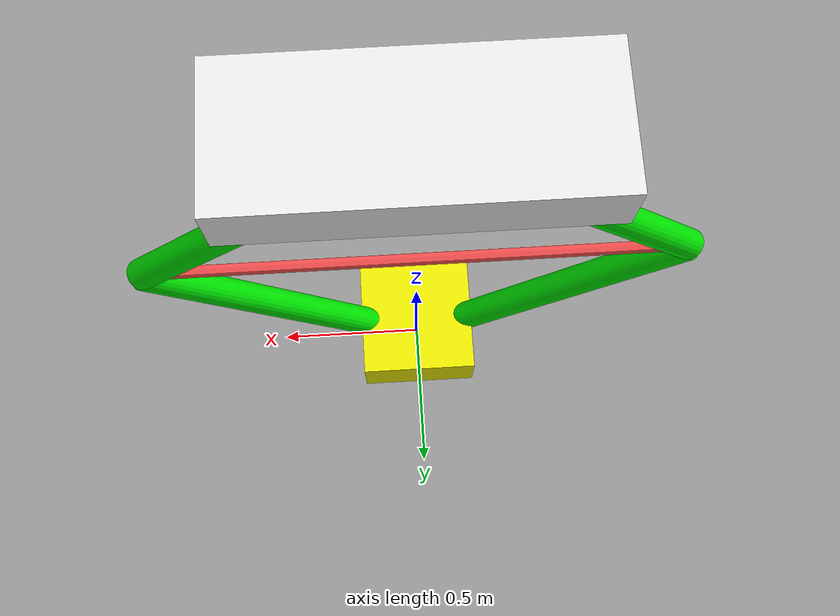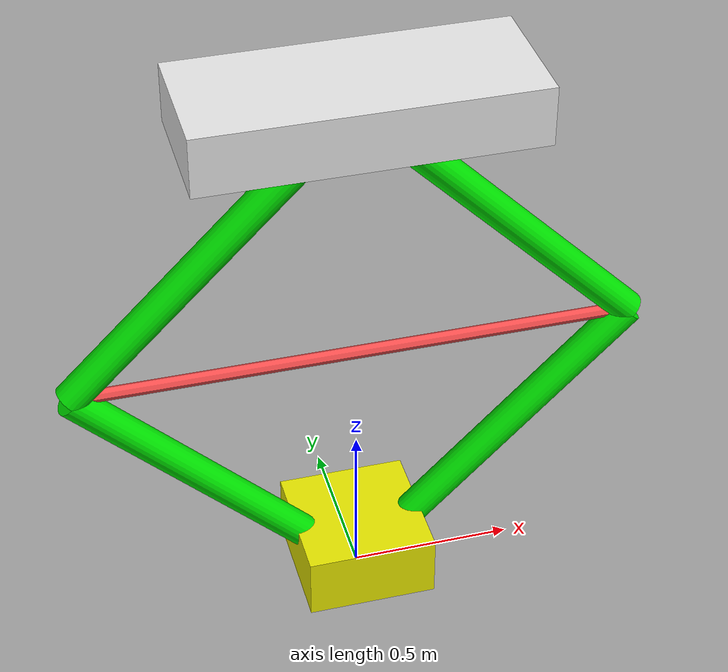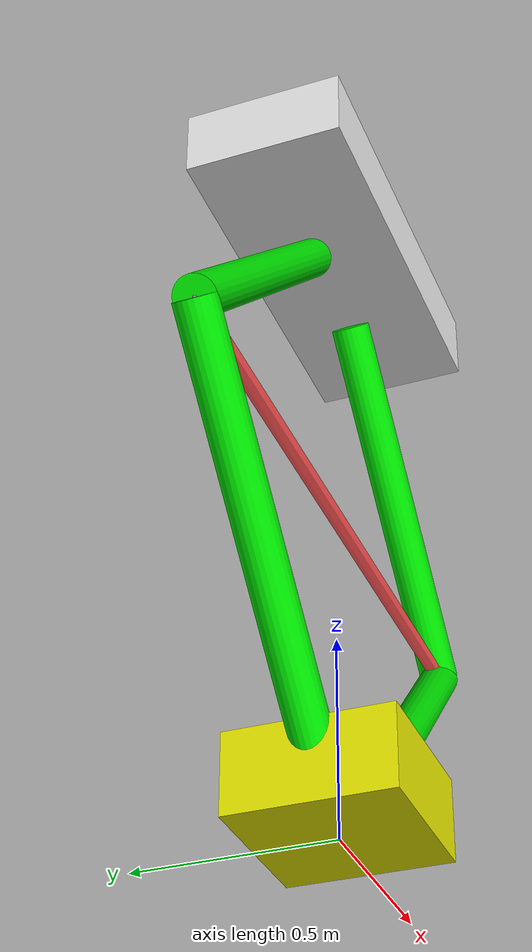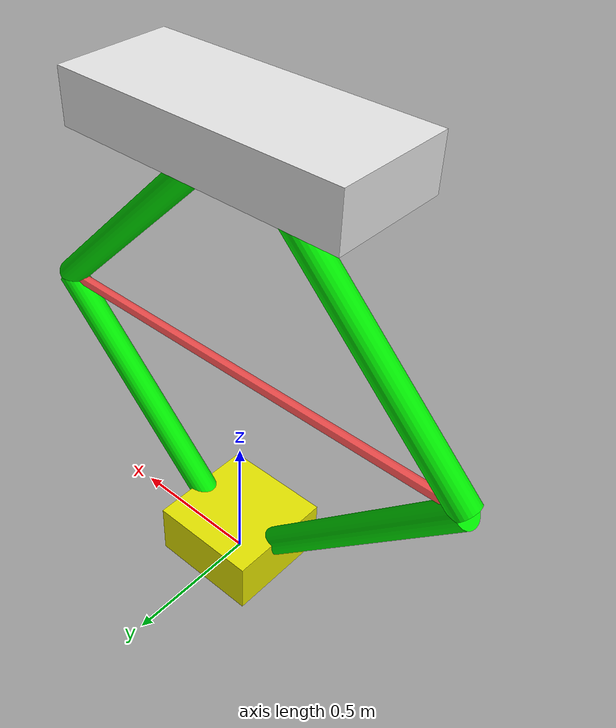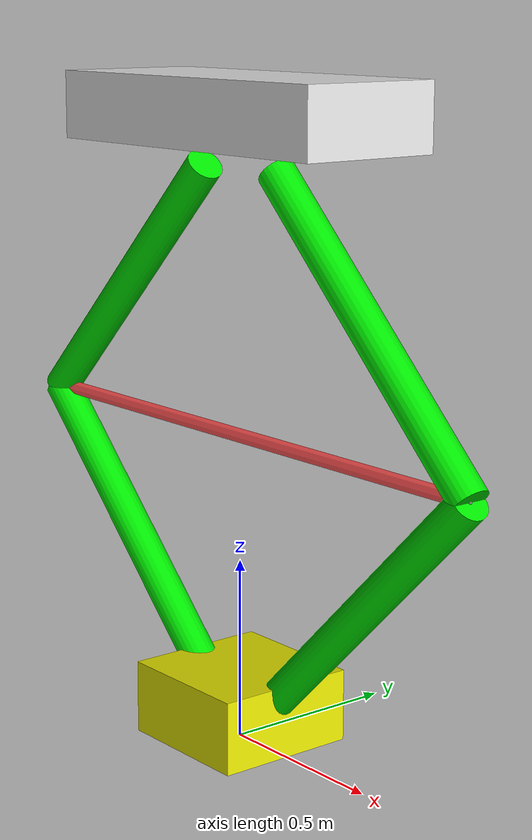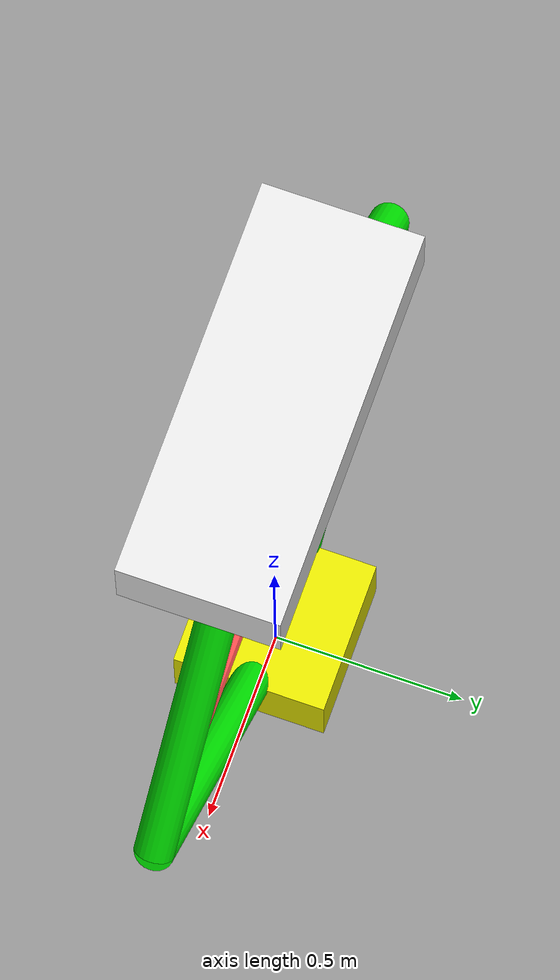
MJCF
<mujoco>

	<option timestep="0.001" integrator="RK4" gravity="0 0 -9.81">
		<flag sensornoise="enable" contact="enable" energy="enable" />
	</option>

	<statistic center="0 0 0.55" extent="1.1" />

	<visual>
		<headlight diffuse="0.6 0.6 0.6" ambient="0.3 0.3 0.3" specular="0 0 0" />
		<rgba haze="0.15 0.25 0.35 1" />
		<global azimuth="150" elevation="-20" />
	</visual>

	<worldbody>
		<light diffuse=".5 .5 .5" pos="0 0 3" dir="0 0 -1" />
		<body name="hopper" pos="0 0 1.7">
			<!-- 约束跳跃机器人只在x和z方向自由 -->
			<joint name="x" type="slide" pos="0 0 0" axis="1 0 0" />
			<joint name="z" type="slide" pos="0 0 0" axis="0 0 1" />

			<geom type="box" size=".5 .2 .09" rgba=".9 .9 .9 1" mass="1" />
			<site name="imu" size="0.01" pos="0 0 0" />
			<body name="thigh_left" pos="-0.5 0 -0.5" euler="0 45 0">
				<joint name="hip_left" type="hinge" pos="0 0 0.5" axis="0 -1 0" />
				<geom type="cylinder" size=".05 .5" rgba="0 .9 0 1" />
				<site name="s_left" pos="0 0 -0.5" />
				<body name="leg_left" pos=".5 0 -0.5" euler="0 -90 0">
					<joint name="knee_left" type="hinge" pos="0 0 0.5" axis="0 -1 0" />
					<geom type="cylinder" size=".05 .5" rgba="0 .9 0 1" />
				</body>
			</body>
			<body name="thigh_right" pos="0.5 0 -0.5" euler="0 -45 0">
				<joint name="hip_right" type="hinge" pos="0 0 0.5" axis="0 -1 0" />
				<geom type="cylinder" size=".05 .5" rgba="0 .9 0 1" />
				<site name="s_right" pos="0 0 -0.5" />
				<body name="leg_right" pos="-.5 0 -0.5" euler="0 90 0">
					<joint name="knee_right" type="hinge" pos="0 0 0.5" axis="0 -1 0" />
					<geom type="cylinder" size=".05 .5" rgba="0 .9 0 1" />
				</body>
			</body>
		</body>
		<body name="foot" pos="0 0 0.101">
			<freejoint />
			<geom type="box" size=".2 .2 .1" rgba=".9 .9 .0 1" mass="1" />
		</body>
	</worldbody>

	<contact>
		<exclude name="e0" body1="hopper" body2="thigh_left" />
		<exclude name="e1" body1="hopper" body2="thigh_right" />
		<exclude name="e2" body1="thigh_left" body2="leg_left" />
		<exclude name="e3" body1="thigh_right" body2="leg_right" />
		<exclude name="e4" body1="leg_left" body2="foot" />
		<exclude name="e5" body1="leg_right" body2="foot" />
	</contact>

	<equality>
		<connect name="c1" body1="leg_left" body2="foot" anchor="0 0 -0.5" />
		<connect name="c2" body1="leg_right" body2="foot" anchor="0 0 -0.5" />
	</equality>

	<tendon>
		<spatial name='tendon1' range="0.1 10" limited="true" width=".02" rgba=".95 .3 .3 1"
			stiffness="1500" damping="10" springlength="1 1.101">
			<site site="s_left" />
			<site site="s_right" />
		</spatial>
	</tendon>

	<actuator>
		<motor name="left-hip-roll" joint="hip_left" gear="25" ctrlrange="-2 2" ctrllimited="true"
			user="2900" />
		<motor name="right-hip-roll" joint="hip_right" gear="25" ctrlrange="-2 2" ctrllimited="true"
			user="2900" />

	</actuator>

	<sensor>
		<jointpos name="hip_pos_sensor" joint="hip_left" noise="0" />
		<jointvel name="hip_vel_sensor" joint="hip_left" noise="0" />
	</sensor>

</mujoco>
